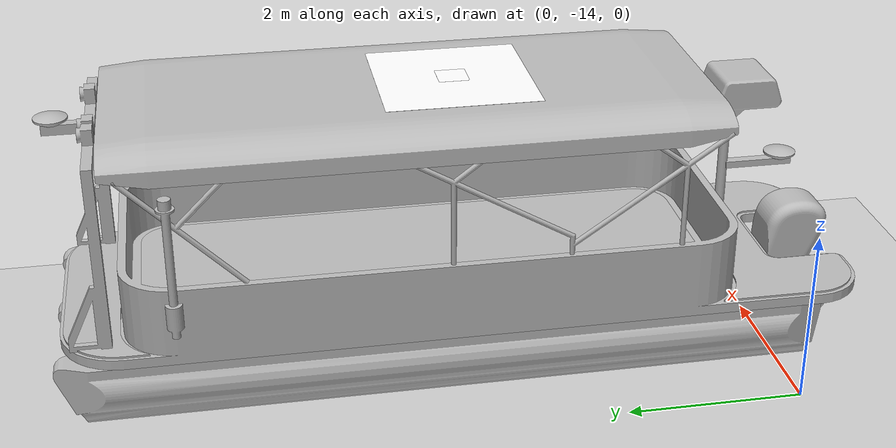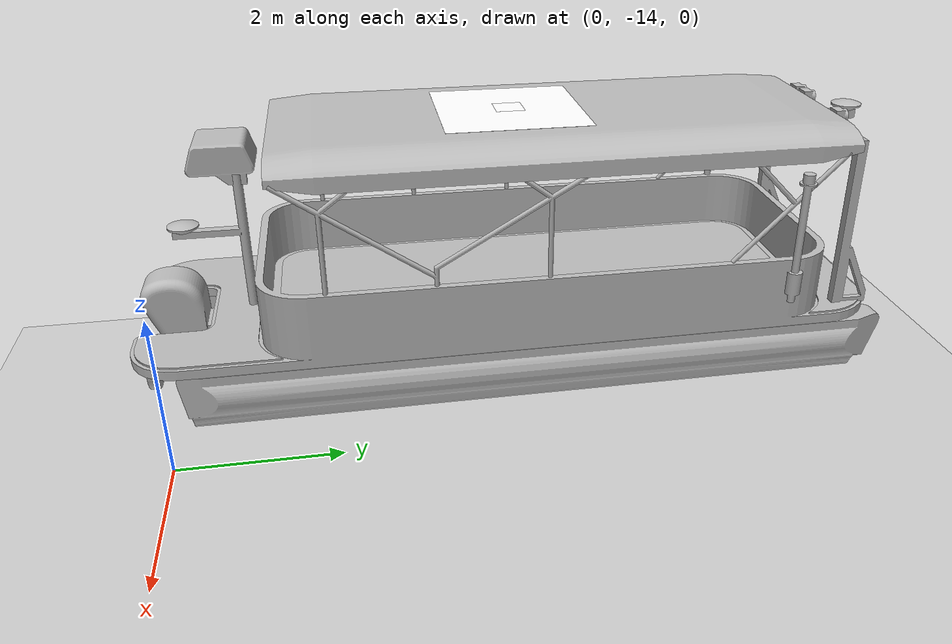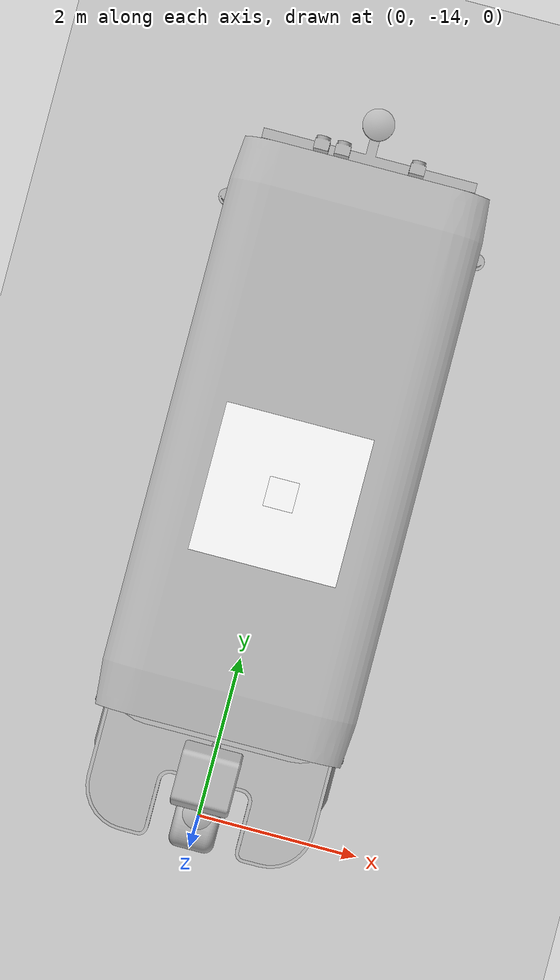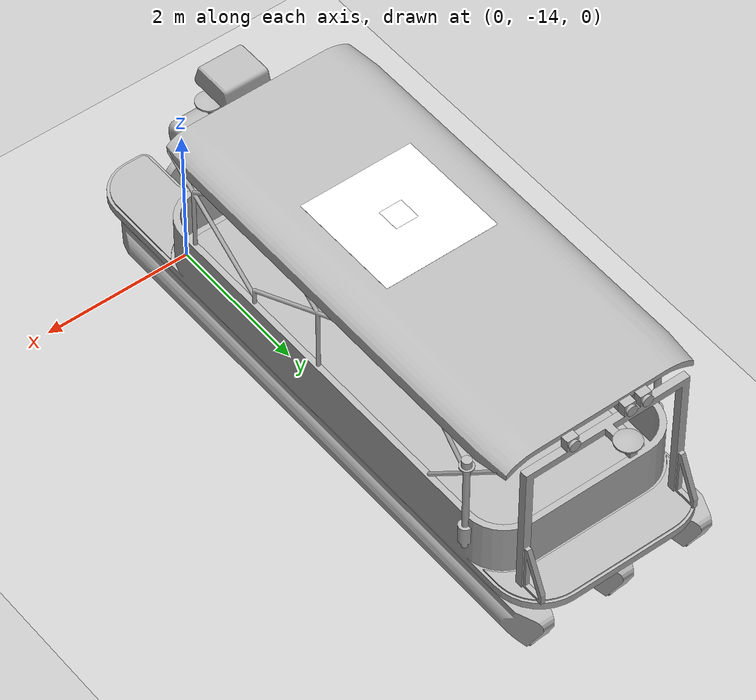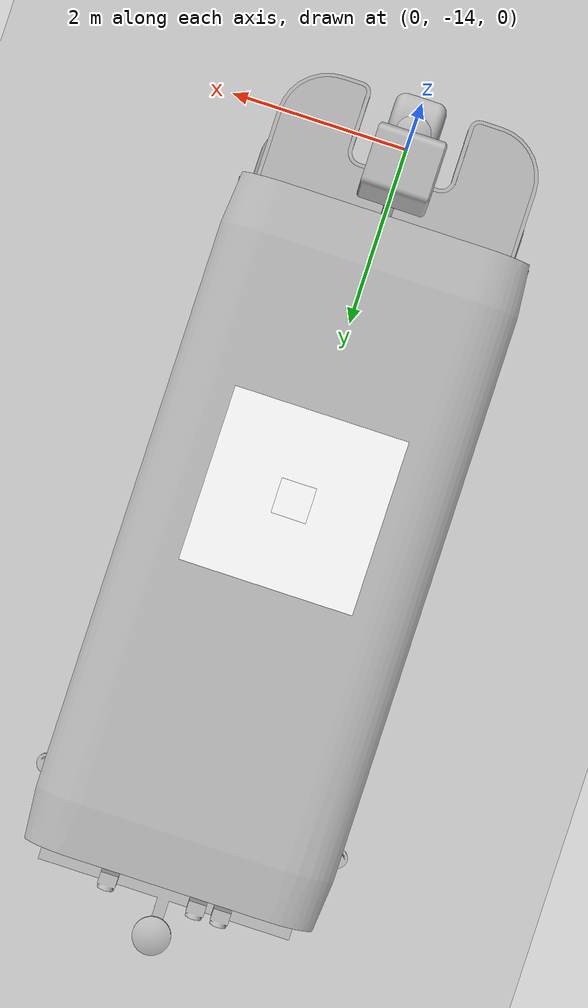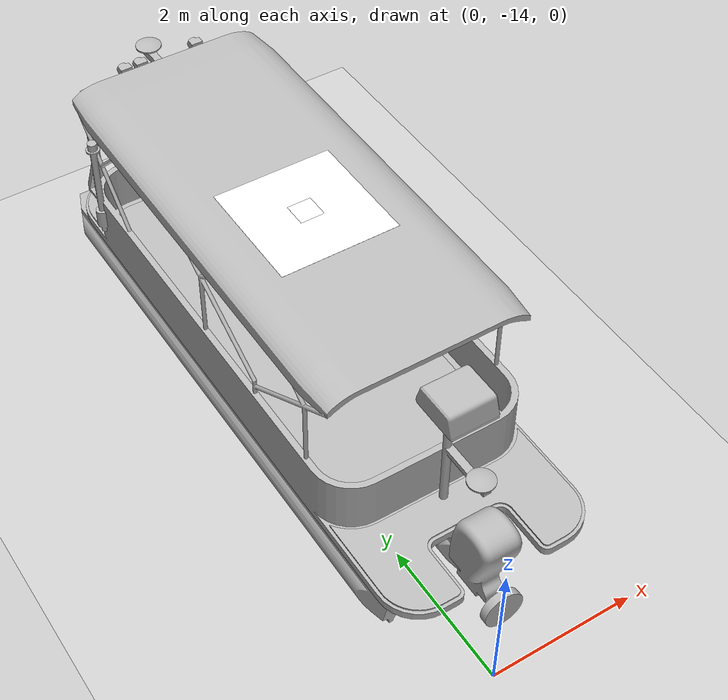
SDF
<?xml version="1.0" encoding="UTF-8"?>
<sdf version="1.9">
  <world name="aruco_barge">
    <physics type="ode">
      <max_step_size>0.004</max_step_size>
      <real_time_factor>1.0</real_time_factor>
      <real_time_update_rate>250</real_time_update_rate>
    </physics>
    <gravity>0 0 -9.8</gravity>
    <magnetic_field>6e-06 2.3e-05 -4.2e-05</magnetic_field>
    <atmosphere type="adiabatic"/>
    <scene>
      <grid>false</grid>
      <ambient>0.4 0.4 0.4 1</ambient>
      <background>0.7 0.7 0.7 1</background>
      <shadows>true</shadows>
    </scene>

    <model name="ground_plane">
      <static>true</static>
      <link name="link">
        <collision name="collision">
          <geometry>
            <plane>
              <normal>0 0 1</normal>
              <size>1 1</size>
            </plane>
          </geometry>
          <surface>
            <friction>
              <ode/>
            </friction>
            <bounce/>
            <contact/>
          </surface>
        </collision>
        <visual name="visual">
          <geometry>
            <plane>
              <normal>0 0 1</normal>
              <size>100 100</size>
            </plane>
          </geometry>
          <material>
            <ambient>0.8 0.8 0.8 1</ambient>
            <diffuse>0.8 0.8 0.8 1</diffuse>
            <specular>0.8 0.8 0.8 1</specular>
          </material>
        </visual>
        <pose>0 0 0 0 -0 0</pose>
        <inertial>
          <pose>0 0 0 0 -0 0</pose>
          <mass>1</mass>
          <inertia>
            <ixx>1</ixx>
            <ixy>0</ixy>
            <ixz>0</ixz>
            <iyy>1</iyy>
            <iyz>0</iyz>
            <izz>1</izz>
          </inertia>
        </inertial>
        <enable_wind>false</enable_wind>
      </link>
      <pose>0 0 0 0 -0 0</pose>
      <self_collide>false</self_collide>
    </model>

    <light name="sunUTC" type="directional">
      <pose>0 0 500 0 -0 0</pose>
      <cast_shadows>true</cast_shadows>
      <intensity>1</intensity>
      <direction>0.001 0.625 -0.78</direction>
      <diffuse>0.904 0.904 0.904 1</diffuse>
      <specular>0.271 0.271 0.271 1</specular>
      <attenuation>
        <range>2000</range>
        <linear>0</linear>
        <constant>1</constant>
        <quadratic>0</quadratic>
      </attenuation>
      <spot>
        <inner_angle>0</inner_angle>
        <outer_angle>0</outer_angle>
        <falloff>0</falloff>
      </spot>
    </light>
    <spherical_coordinates>
      <surface_model>EARTH_WGS84</surface_model>
      <world_frame_orientation>ENU</world_frame_orientation>
      <latitude_deg>47.397971057728974</latitude_deg>
      <longitude_deg> 8.546163739800146</longitude_deg>
      <elevation>0</elevation>
    </spherical_coordinates>

    <include>
      <pose>0 -10 2 0 0 0</pose>
      <uri>model://pohang_barge</uri>
    </include>

  </world>
</sdf>

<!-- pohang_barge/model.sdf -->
<sdf version="1.11">
  <model name="pohang_barge">

    <link name="base_link">

      <inertial>
        <mass>0.0001</mass>
        <inertia>
          <ixx>1e-09</ixx>
          <ixy>0</ixy>
          <ixz>0</ixz>
          <iyy>1e-09</iyy>
          <iyz>0</iyz>
          <izz>1e-09</izz>
        </inertia>
      </inertial>

      <!-- GPS tracking the barge -->
      <sensor name="navsat_sensor" type="navsat">
        <gz_frame_id>base_link</gz_frame_id>
        <always_on>1</always_on>
        <update_rate>1</update_rate>

        <navsat>
          <position_sensing>
          <horizontal>
            <noise type="gaussian">
              <stddev>1.2e-5</stddev>
            </noise>
          </horizontal>
        </position_sensing>
        </navsat>

        <topic>/barge/gps</topic>
      </sensor>

      <!-- Groundtruth GPS tracking the barge -->
      <sensor name="groundtruth_navsat_sensor" type="navsat">
        <gz_frame_id>base_link</gz_frame_id>
        <always_on>1</always_on>
        <update_rate>30</update_rate>

        <navsat>
          <position_sensing>
          <horizontal>
            <noise type="gaussian">
              <stddev>0.0</stddev>
            </noise>
          </horizontal>
        </position_sensing>
        </navsat>

        <topic>/barge/gz_groundtruth_gps</topic>
      </sensor>

    </link>

    <link name="rigid_group_1_1">
      <inertial>
        <pose>0.0 0.0 0.0 0.0 -0.0 0.0</pose>
        <mass>10000</mass>
        <inertia>
          <ixx>10000</ixx>
          <iyy>10000</iyy>
          <izz>10000</izz>
        </inertia>
      </inertial>

      <visual name="rigid_group_1_1__body1_visual">
        <pose> 0 -4 0 0 0 0 </pose> <!-- mod -->
        <geometry>
          <mesh>
            <scale>0.01 0.01 0.01</scale>
            <uri>meshes/rigid_group_1_1/body1_visual.obj</uri>
          </mesh>
        </geometry>
      </visual>
      <visual name="rigid_group_1_1__body2_visual">
        <pose> 0 -4 0 0 0 0 </pose> <!-- mod -->
        <geometry>
          <mesh>
            <scale>0.01 0.01 0.01</scale>
            <uri>meshes/rigid_group_1_1/body2_visual.obj</uri>
          </mesh>
        </geometry>
      </visual>
      <visual name="rigid_group_1_1__body3_visual">
        <pose> 0 -4 0 0 0 0 </pose> <!-- mod -->
        <geometry>
          <mesh>
            <scale>0.01 0.01 0.01</scale>
            <uri>meshes/rigid_group_1_1/body3_visual.obj</uri>
          </mesh>
        </geometry>
      </visual>
      <visual name="rigid_group_1_1__body4_visual">
        <pose> 0 -4 0 0 0 0 </pose> <!-- mod -->
        <geometry>
          <mesh>
            <scale>0.01 0.01 0.01</scale>
            <uri>meshes/rigid_group_1_1/body4_visual.obj</uri>
          </mesh>
        </geometry>
      </visual>
      <visual name="rigid_group_1_1__body5_visual">
        <pose> 0 -4 0 0 0 0 </pose> <!-- mod -->
        <geometry>
          <mesh>
            <scale>0.01 0.01 0.01</scale>
            <uri>meshes/rigid_group_1_1/body5_visual.obj</uri>
          </mesh>
        </geometry>
      </visual>
      <visual name="rigid_group_1_1__body6_visual">
        <pose> 0 -4 0 0 0 0 </pose> <!-- mod -->
        <geometry>
          <mesh>
            <scale>0.01 0.01 0.01</scale>
            <uri>meshes/rigid_group_1_1/body6_visual.obj</uri>
          </mesh>
        </geometry>
      </visual>
      <visual name="rigid_group_1_1__body7_visual">
        <pose> 0 -4 0 0 0 0 </pose> <!-- mod -->
        <geometry>
          <mesh>
            <scale>0.01 0.01 0.01</scale>
            <uri>meshes/rigid_group_1_1/body7_visual.obj</uri>
          </mesh>
        </geometry>
      </visual>
      <visual name="rigid_group_1_1__body8_visual">
        <pose> 0 -4 0 0 0 0 </pose> <!-- mod -->
        <geometry>
          <mesh>
            <scale>0.01 0.01 0.01</scale>
            <uri>meshes/rigid_group_1_1/body8_visual.obj</uri>
          </mesh>
        </geometry>
      </visual>
      <visual name="rigid_group_1_1__body9_visual">
        <pose> 0 -4 0 0 0 0 </pose> <!-- mod -->
        <geometry>
          <mesh>
            <scale>0.01 0.01 0.01</scale>
            <uri>meshes/rigid_group_1_1/body9_visual.obj</uri>
          </mesh>
        </geometry>
      </visual>
      <visual name="rigid_group_1_1__body10_visual">
        <pose> 0 -4 0 0 0 0 </pose> <!-- mod -->
        <geometry>
          <mesh>
            <scale>0.01 0.01 0.01</scale>
            <uri>meshes/rigid_group_1_1/body10_visual.obj</uri>
          </mesh>
        </geometry>
      </visual>
      <visual name="rigid_group_1_1__body11_visual">
        <pose> 0 -4 0 0 0 0 </pose> <!-- mod -->
        <geometry>
          <mesh>
            <scale>0.01 0.01 0.01</scale>
            <uri>meshes/rigid_group_1_1/body11_visual.obj</uri>
          </mesh>
        </geometry>
      </visual>
      <visual name="rigid_group_1_1__body12_visual">
        <pose> 0 -4 0 0 0 0 </pose> <!-- mod -->
        <geometry>
          <mesh>
            <scale>0.01 0.01 0.01</scale>
            <uri>meshes/rigid_group_1_1/body12_visual.obj</uri>
          </mesh>
        </geometry>
      </visual>
      <visual name="rigid_group_1_1__body13_visual">
        <pose> 0 -4 0 0 0 0 </pose> <!-- mod -->
        <geometry>
          <mesh>
            <scale>0.01 0.01 0.01</scale>
            <uri>meshes/rigid_group_1_1/body13_visual.obj</uri>
          </mesh>
        </geometry>
      </visual>
      <visual name="rigid_group_1_1__body14_visual">
        <pose> 0 -4 0 0 0 0 </pose> <!-- mod -->
        <geometry>
          <mesh>
            <scale>0.01 0.01 0.01</scale>
            <uri>meshes/rigid_group_1_1/body14_visual.obj</uri>
          </mesh>
        </geometry>
      </visual>
      <visual name="rigid_group_1_1__body15_visual">
        <pose> 0 -4 0 0 0 0 </pose> <!-- mod -->
        <geometry>
          <mesh>
            <scale>0.01 0.01 0.01</scale>
            <uri>meshes/rigid_group_1_1/body15_visual.obj</uri>
          </mesh>
        </geometry>
      </visual>
      <visual name="rigid_group_1_1__body16_visual">
        <pose> 0 -4 0 0 0 0 </pose> <!-- mod -->
        <geometry>
          <mesh>
            <scale>0.01 0.01 0.01</scale>
            <uri>meshes/rigid_group_1_1/body16_visual.obj</uri>
          </mesh>
        </geometry>
      </visual>
      <visual name="rigid_group_1_1__body17_visual">
        <pose> 0 -4 0 0 0 0 </pose> <!-- mod -->
        <geometry>
          <mesh>
            <scale>0.01 0.01 0.01</scale>
            <uri>meshes/rigid_group_1_1/body17_visual.obj</uri>
          </mesh>
        </geometry>
      </visual>
      <visual name="rigid_group_1_1__body18_visual">
        <pose> 0 -4 0 0 0 0 </pose> <!-- mod -->
        <geometry>
          <mesh>
            <scale>0.01 0.01 0.01</scale>
            <uri>meshes/rigid_group_1_1/body18_visual.obj</uri>
          </mesh>
        </geometry>
      </visual>
      <visual name="rigid_group_1_1__body19_visual">
        <pose> 0 -4 0 0 0 0 </pose> <!-- mod -->
        <geometry>
          <mesh>
            <scale>0.01 0.01 0.01</scale>
            <uri>meshes/rigid_group_1_1/body19_visual.obj</uri>
          </mesh>
        </geometry>
      </visual>
      <visual name="rigid_group_1_1__body20_visual">
        <pose> 0 -4 0 0 0 0 </pose> <!-- mod -->
        <geometry>
          <mesh>
            <scale>0.01 0.01 0.01</scale>
            <uri>meshes/rigid_group_1_1/body20_visual.obj</uri>
          </mesh>
        </geometry>
      </visual>
      <visual name="rigid_group_1_1__body21_visual">
        <pose> 0 -4 0 0 0 0 </pose> <!-- mod -->
        <geometry>
          <mesh>
            <scale>0.01 0.01 0.01</scale>
            <uri>meshes/rigid_group_1_1/body21_visual.obj</uri>
          </mesh>
        </geometry>
      </visual>
      <visual name="rigid_group_1_1__body22_visual">
        <pose> 0 -4 0 0 0 0 </pose> <!-- mod -->
        <geometry>
          <mesh>
            <scale>0.01 0.01 0.01</scale>
            <uri>meshes/rigid_group_1_1/body22_visual.obj</uri>
          </mesh>
        </geometry>
      </visual>
      <visual name="rigid_group_1_1__body23_visual">
        <pose> 0 -4 0 0 0 0 </pose> <!-- mod -->
        <geometry>
          <mesh>
            <scale>0.01 0.01 0.01</scale>
            <uri>meshes/rigid_group_1_1/body23_visual.obj</uri>
          </mesh>
        </geometry>
      </visual>
      <collision name="rigid_group_1_1__body1_collision">
        <pose relative_to="__model__">0.0 -0.07760557161971007 0.39 -0.0 -1.5707963267948966 0</pose>
        <geometry>
          <box>
            <size>0.78 7.899999999999999 2.6</size>
          </box>
        </geometry>
      </collision>
      <collision name="rigid_group_1_1__body2_collision">
        <pose relative_to="__model__">1.3091712984793202 2.7723944283802884 1.009013921906406 -0.0 -1.5707963267948966 0</pose>
        <geometry>
          <box>
            <size>1.415 0.1736757583557119 0.1736757583557119</size>
          </box>
        </geometry>
      </collision>
      <collision name="rigid_group_1_1__body3_collision">
        <pose relative_to="__model__">-0.49372832725050236 3.4413944283803097 2.025831558562522 -0.0 -1.5707963267948966 0</pose>
        <geometry>
          <box>
            <size>0.1516631171250441 0.14200000000000046 0.15166311712504424</size>
          </box>
        </geometry>
      </collision>
      <collision name="rigid_group_1_1__body4_collision">
        <pose relative_to="__model__">-0.28060957850807905 3.4413944283803097 2.025831558562522 -0.0 -1.5707963267948966 0</pose>
        <geometry>
          <box>
            <size>0.1516631171250441 0.14200000000000046 0.15166311712504424</size>
          </box>
        </geometry>
      </collision>
      <collision name="rigid_group_1_1__body5_collision">
        <pose relative_to="__model__">5.684341886080802e-16 3.774593733387486 1.9983688793657182 -0.0 -1.5707963267948966 0</pose>
        <geometry>
          <box>
            <size>0.09673775873143654 0.3230463818096746 0.3230463818096746</size>
          </box>
        </geometry>
      </collision>
      <collision name="rigid_group_1_1__body6_collision">
        <pose relative_to="__model__">0.0 -2.9752073711466442 1.7548884461195584 -0.0 -1.5707963267948966 0</pose>
        <geometry>
          <box>
            <size>0.5060872145969944 0.6663524437643003 0.6</size>
          </box>
        </geometry>
      </collision>
      <collision name="rigid_group_1_1__body7_collision">
        <pose relative_to="__model__">-1.3091712984793202 2.7723944283802884 1.009013921906406 -0.0 -1.5707963267948966 0</pose>
        <geometry>
          <box>
            <size>1.415 0.1736757583557119 0.1736757583557119</size>
          </box>
        </geometry>
      </collision>
      <collision name="rigid_group_1_1__body8_collision">
        <pose relative_to="__model__">4.263256414560601e-16 -3.249026927857019 0.10999999999999999 -0.0 -1.5707963267948966 0</pose>
        <geometry>
          <box>
            <size>0.02 1.4771572875253804 2.519999999999999</size>
          </box>
        </geometry>
      </collision>
      <collision name="rigid_group_1_1__body9_collision">
        <pose relative_to="__model__">5.684341886080802e-16 -3.461393657224969 1.066638213589763 -0.0 -1.5707963267948966 0</pose>
        <geometry>
          <box>
            <size>0.09673775873143625 0.3230463818096746 0.3230463818096746</size>
          </box>
        </geometry>
      </collision>
      <collision name="rigid_group_1_1__body10_collision">
        <pose relative_to="__model__">0.48468047379425977 3.4413944283803097 2.025831558562522 -0.0 -1.5707963267948966 0</pose>
        <geometry>
          <box>
            <size>0.1516631171250441 0.14200000000000046 0.15166311712504424</size>
          </box>
        </geometry>
      </collision>
      <collision name="rigid_group_1_1__body11_collision">
        <pose relative_to="__model__">7.105427357601002e-16 0.2723944283802894 0.19 -0.0 -1.5707963267948966 0</pose>
        <geometry>
          <box>
            <size>0.02 5.6633809586679105 2.2633809586679092</size>
          </box>
        </geometry>
      </collision>
      <collision name="rigid_group_1_1__body12_collision">
        <pose relative_to="__model__">2.842170943040401e-16 3.434161358288616 0.10999999999999999 -0.0 -1.5707963267948966 0</pose>
        <geometry>
          <box>
            <size>0.02 0.810722187321536 2.5342560471381894</size>
          </box>
        </geometry>
      </collision>
      <collision name="rigid_group_1_1__body13_collision">
        <pose relative_to="__model__">0.0 0.4203929378302905 1.9755576417107052 -0.0 -1.5707963267948966 0</pose>
        <geometry>
          <box>
            <size>0.30888471657858874 5.8440029811 2.600001881429384</size>
          </box>
        </geometry>
      </collision>
      <collision name="rigid_group_1_1__body14_collision">
        <pose relative_to="__model__">0.0 -3.188886479239051 0.9 -0.0 -1.5707963267948966 0</pose>
        <geometry>
          <box>
            <size>1.6 0.7716370238292086 0.1</size>
          </box>
        </geometry>
      </collision>
      <collision name="rigid_group_1_1__body15_collision">
        <pose relative_to="__model__">5.684341886080802e-16 3.6223944283802996 1.025 -0.0 -1.5707963267948966 0</pose>
        <geometry>
          <box>
            <size>1.85 0.5000000000000204 2.2</size>
          </box>
        </geometry>
      </collision>
      <collision name="rigid_group_1_1__body16_collision">
        <pose relative_to="__model__">-3.552713678800501e-17 -3.704660994669814 -0.1342851820443572 -0.0 -1.5707963267948966 0</pose>
        <geometry>
          <box>
            <size>1.3717154657998476 0.7141108461002097 0.5000000000000001</size>
          </box>
        </geometry>
      </collision>
      <collision name="rigid_group_1_1__body17_collision">
        <pose relative_to="__model__">-1.25 -0.909849865763372 1.3538065090970317 -0.0 -1.5707963267948966 0</pose>
        <geometry>
          <box>
            <size>1.1453292304760583 3.136318124513548 0.05</size>
          </box>
        </geometry>
      </collision>
      <collision name="rigid_group_1_1__body18_collision">
        <pose relative_to="__model__">-1.2500000000024074 2.402744169886584 1.5834748154213876 1.570796326787967 -0.7853981645369817 -1.5707963268046965</pose>
        <geometry>
          <box>
            <size>0.7448189181832927 1.5745212776546214 0.05</size>
          </box>
        </geometry>
      </collision>
      <collision name="rigid_group_1_1__body19_collision">
        <pose relative_to="__model__">1.25 -0.909849865763372 1.3538065090970317 -0.0 -1.5707963267948966 0</pose>
        <geometry>
          <box>
            <size>1.1453292304760583 3.136318124513548 0.05</size>
          </box>
        </geometry>
      </collision>
      <collision name="rigid_group_1_1__body20_collision">
        <pose relative_to="__model__">1.2499999999975926 2.402744169886584 1.5834748154213876 1.570796326787967 -0.7853981645369817 -1.5707963268046965</pose>
        <geometry>
          <box>
            <size>0.7448189181832925 1.5745212776546214 0.05</size>
          </box>
        </geometry>
      </collision>
      <collision name="rigid_group_1_1__body21_collision">
        <pose relative_to="__model__">-1.0799022142936425 0.18260878463769414 -0.34187878426356005 -0.0 -1.5707963267948966 0</pose>
        <geometry>
          <box>
            <size>0.6773910345313103 7.511649319372327 0.5276180924708257</size>
          </box>
        </geometry>
      </collision>
      <collision name="rigid_group_1_1__body22_collision">
        <pose relative_to="__model__">1.0980977857063572 0.18260878463769414 -0.34187878426356005 -0.0 -1.5707963267948966 0</pose>
        <geometry>
          <box>
            <size>0.6773910345313103 7.511649319372327 0.5276180924708257</size>
          </box>
        </geometry>
      </collision>
      <collision name="rigid_group_1_1__body23_collision">
        <pose relative_to="__model__">0.00909778570635737 0.18260878463769414 -0.34187878426356005 -0.0 -1.5707963267948966 0</pose>
        <geometry>
          <box>
            <size>0.6773910345313103 7.511649319372327 0.5276180924708257</size>
          </box>
        </geometry>
      </collision>
    </link>

    <!-- ArucoTag model for good practice -->
    <include>
      <uri>model://arucotag_0</uri>
      <name>arucotag_0</name>
      <pose>0 0 2.16 0 0 3.141</pose>
    </include>

    <include>
      <uri>model://arucotag_19</uri>
      <name>arucotag_19</name>
      <pose>0 0 2.15 0 0 3.141</pose>
    </include>

    <!-- Fixed joint -->
    <joint name="fixed_joint_to_arucotag_0" type="fixed">
      <parent>base_link</parent>   <!-- A link in the parent model -->
      <child>arucotag_0::base_0</child> <!-- Link inside child model -->
    </joint>

    <joint name="fixed_joint_to_arucotag_59" type="fixed">
      <parent>base_link</parent>   <!-- A link in the parent model -->
      <child>arucotag_19::base_19</child> <!-- Link inside child model -->
    </joint>

    <joint name="base_link_joint" type="fixed">
      <parent>base_link</parent>
      <child>rigid_group_1_1</child>
      <pose>0 0.0 0 0 0 0.0</pose>
      <axis/>
    </joint>

    <!-- Plugins -->

    <plugin
      filename="libBargeController.so"
      name="custom::BargeController">
      <link_name>rigid_group_1_1</link_name>
    </plugin>

    <plugin
      filename="gz-sim-odometry-publisher-system"
      name="gz::sim::systems::OdometryPublisher">
      <odom_publish_frequency>50</odom_publish_frequency>
      <dimensions>3</dimensions>
      <odom_topic>barge/odom</odom_topic>
      <odom_covariance_topic>barge/odom_covariance</odom_covariance_topic>
    </plugin>

  </model>
</sdf>

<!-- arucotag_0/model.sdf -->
<sdf version='1.9'>
  <model name='arucotag_0'>
    <static>true</static>
    <pose>0 0 0.001 0 0 0</pose>
    <link name='base_0'>
      <visual name='base_visual'>
        <geometry>
          <plane>
            <normal>0 0 1</normal>
            <size>0.3 0.3</size>
          </plane>
        </geometry>
        <material>
          <diffuse>1 1 1 1</diffuse>
          <specular>0.4 0.4 0.4 1</specular>
          <pbr>
            <metal>
              <albedo_map>model://arucotag_0/4x4_1000-0.png</albedo_map>
            </metal>
          </pbr>
        </material>
      </visual>

      <!-- GPS tracking tag for px4 groundtruth -->
      <sensor name="navsat_sensor" type="navsat">
        <gz_frame_id>base_0</gz_frame_id>
        <always_on>1</always_on>
        <update_rate>30</update_rate>

        <navsat>
          <position_sensing>
          <horizontal>
            <noise type="gaussian">
              <stddev>0</stddev>
            </noise>
          </horizontal>
        </position_sensing>
        </navsat>

        <topic>/tag/itag/gz_groundtruth_gps</topic>
      </sensor>

    </link>

  </model>
</sdf>

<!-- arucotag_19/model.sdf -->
<sdf version='1.9'>
  <model name='arucotag_19'>
    <static>true</static>
    <pose>0 0 0.001 0 0 0</pose>
    <link name='base_19'>
      <visual name='base_visual'>
        <geometry>
          <plane>
            <normal>0 0 1</normal>
            <size>1.5 1.5</size>
          </plane>
        </geometry>
        <material>
          <diffuse>1 1 1 1</diffuse>
          <specular>0.4 0.4 0.4 1</specular>
          <pbr>
            <metal>
              <albedo_map>model://arucotag_19/6x6_1000-19.png</albedo_map>
            </metal>
          </pbr>
        </material>
      </visual>

      <!-- GPS tracking tag for px4 groundtruth -->
      <sensor name="navsat_sensor" type="navsat">
        <gz_frame_id>base_19</gz_frame_id>
        <always_on>1</always_on>
        <update_rate>30</update_rate>

        <navsat>
          <position_sensing>
          <horizontal>
            <noise type="gaussian">
              <stddev>0</stddev>
            </noise>
          </horizontal>
        </position_sensing>
        </navsat>

        <topic>/tag/otag/gz_groundtruth_gps</topic>
      </sensor>

    </link>

  </model>
</sdf>
